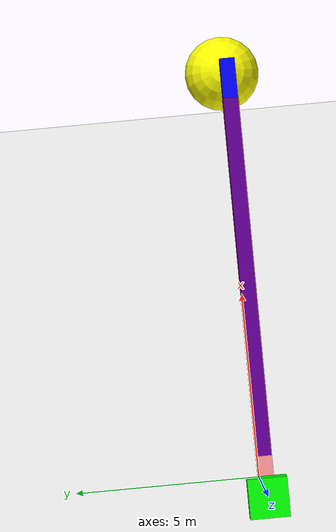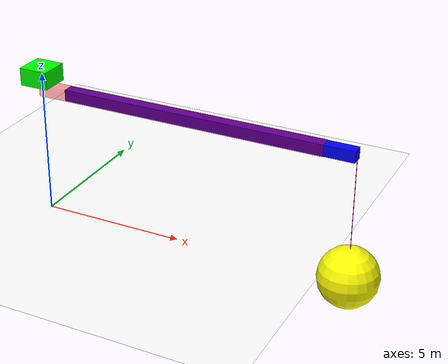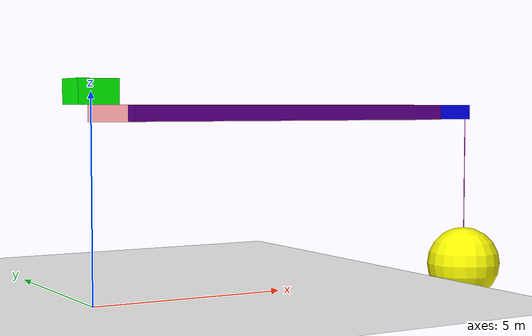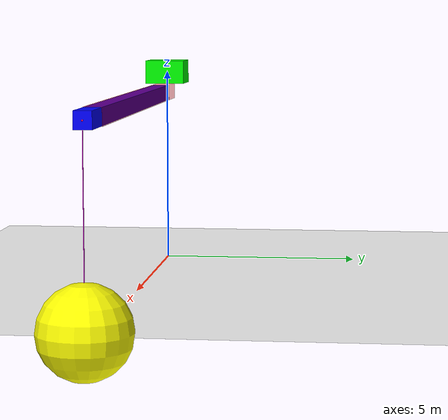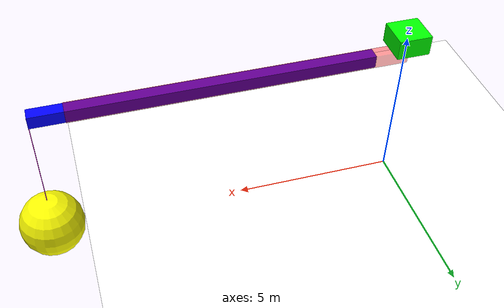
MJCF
<mujoco model="MuJoCo Model">
  <compiler angle="radian" autolimits="true"/>
  <option timestep="0.001">
    <flag contact="disable" energy="enable" sensornoise="enable"/>
  </option>
  <statistic meansize="2.75866" extent="14.01" center="6.005 0 4.254"/>
  <asset>
    <material name="blue" rgba="0 0 1 1"/>
    <material name="red" rgba="1 0 0 0.4"/>
    <material name="green" rgba="0 1 0 1"/>
    <material name="white"/>
    <material name="purple" rgba="1 0.1 1 1"/>
    <material name="yellow" rgba="1 1 0 1"/>
    <material name="gray" rgba="0.5 0.5 0.5 1"/>
  </asset>
  <worldbody>
    <geom size="10 10 0.1" type="plane" material="white"/>
    <light pos="0 0 10" dir="0 0 -1" diffuse="0.5 0.5 0.5"/>
    <body name="trolley" pos="0 0 5">
      <joint name="slider" pos="0 0 0" axis="1 0 0" type="slide" range="-5 5"/>
      <geom name="trolley" size="0.5 0.5 0.3" type="box" material="green"/>
      <body name="arm" pos="5 0 -0.5">
        <joint name="rotator" pos="-5 0 0.2" axis="0 0 1" range="-3.14159 3.14159"/>
        <geom name="arm" size="5 0.2 0.2" type="box" material="red"/>
        <body name="boom" pos="1 0 0">
          <joint name="extender" pos="0 0 0" axis="1 0 0" type="slide"/>
          <geom name="boom" size="5 0.19 0.19" type="box" material="blue"/>
          <site name="boom_tip" pos="5 0 0" size="0.02" rgba="1 0 0.5 1"/>
          <body name="cable" pos="5 0 -2.2">
            <joint name="pendulum" pos="0 0 2" type="ball"/>
            <geom name="cable" size="0.01 2" type="capsule" material="purple"/>
            <body name="payload" pos="0 0 -2">
              <geom name="payload" size="1" mass="5" material="yellow"/>
            </body>
          </body>
        </body>
      </body>
    </body>
  </worldbody>
  <actuator>
    <general name="trolley_position_servo" joint="slider" biastype="affine" gainprm="100000 0 0 0 0 0 0 0 0 0" biasprm="0 -100000 0 0 0 0 0 0 0 0"/>
    <general name="trolley_velocity_servo" joint="slider" biastype="affine" gainprm="1000 0 0 0 0 0 0 0 0 0" biasprm="0 0 -1000 0 0 0 0 0 0 0"/>
    <general name="arm_position_servo" joint="rotator" biastype="affine" gainprm="0 0 0 0 0 0 0 0 0 0"/>
    <general name="arm_velocity_servo" joint="rotator" biastype="affine" gainprm="1000 0 0 0 0 0 0 0 0 0" biasprm="0 0 -1000 0 0 0 0 0 0 0"/>
    <general name="boom_position_servo" joint="extender" biastype="affine" gainprm="100000 0 0 0 0 0 0 0 0 0" biasprm="0 -100000 0 0 0 0 0 0 0 0"/>
    <general name="boom_velocity_servo" joint="extender" biastype="affine" gainprm="1000 0 0 0 0 0 0 0 0 0" biasprm="0 0 -1000 0 0 0 0 0 0 0"/>
    <general name="pend_position_servo" joint="pendulum" biastype="affine" gainprm="0.1 0 0 0 0 0 0 0 0 0" biasprm="0 -0.1 0 0 0 0 0 0 0 0"/>
    <general name="pend_velocity_servo" joint="pendulum" biastype="affine" gainprm="0 0 0 0 0 0 0 0 0 0"/>
    <general name="sensor_position" site="boom_tip" biastype="affine" gainprm="1000000 0 0 0 0 0 0 0 0 0" biasprm="0 -1000000 0 0 0 0 0 0 0 0"/>
  </actuator>
  <sensor>
    <accelerometer site="boom_tip" name="b_t_accel"/>
    <velocimeter site="boom_tip" name="b_t_vel"/>
  </sensor>
</mujoco>
